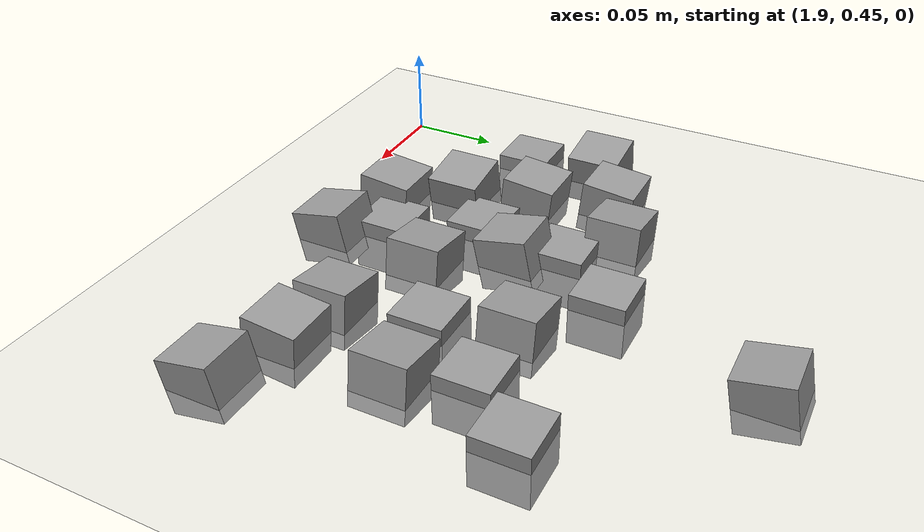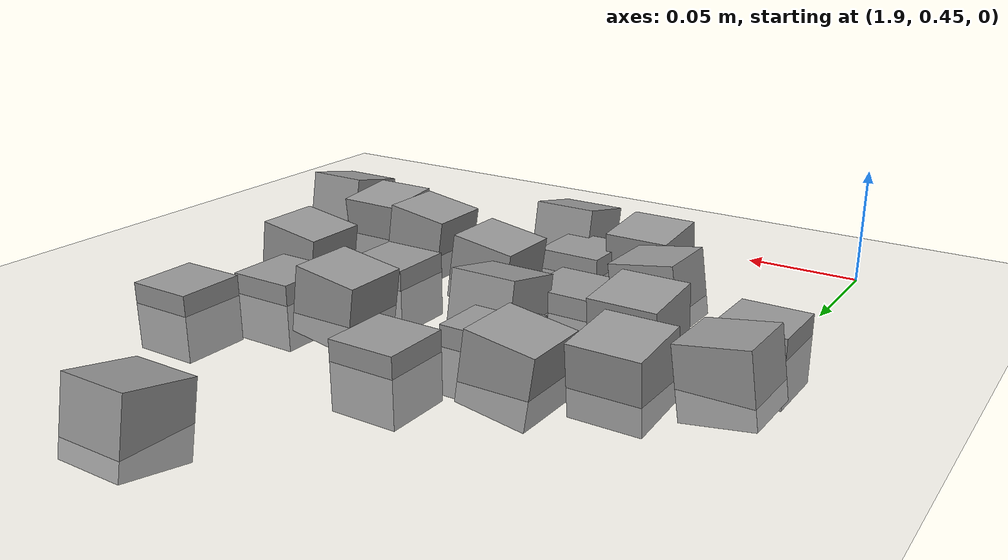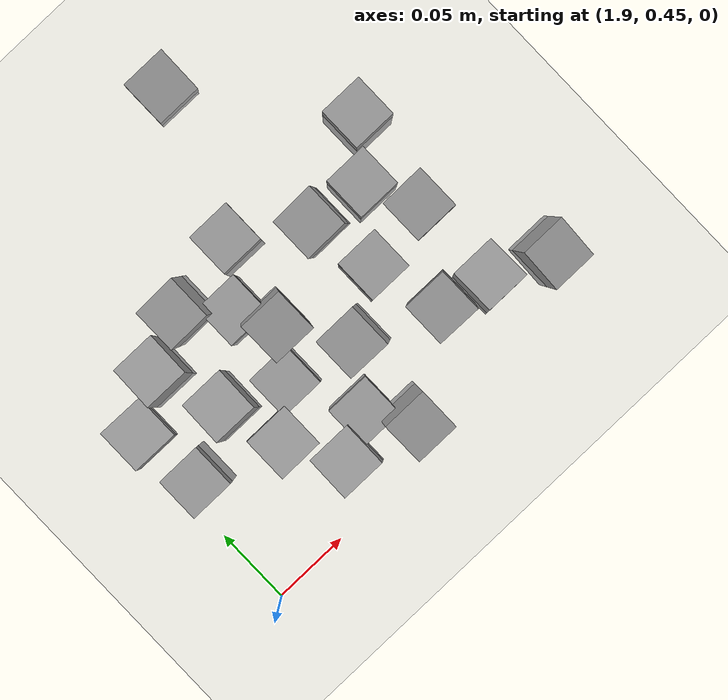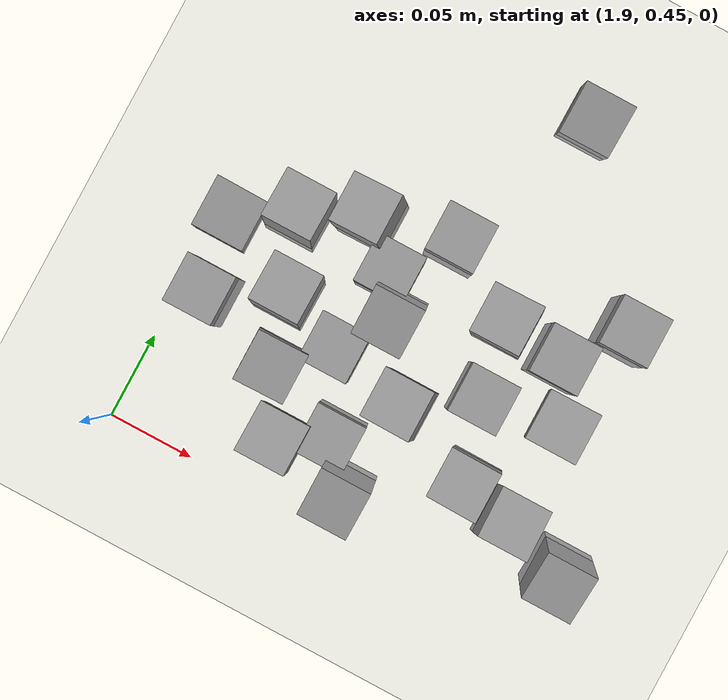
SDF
<sdf version="1.7">
 <world name="default">
  <model name="ground_plane">
   <static>1</static>
   <link name="link">
    <collision name="collision">
     <geometry><plane><normal>0 0 1</normal><size>100 100</size></plane></geometry>
     <surface><friction><ode><mu>100</mu><mu2>50</mu2></ode></friction></surface>
    </collision>
    <visual name="visual">
     <cast_shadows>0</cast_shadows>
     <geometry><plane><normal>0 0 1</normal><size>100 100</size></plane></geometry>
     <material>
      <script><uri>file://media/materials/scripts/gazebo.material</uri><name>Gazebo/Grey</name></script>
     </material>
    </visual>
   </link>
  </model>
  <model name="stone_road_3">
   <link name="link_0_clone_10">
    <inertial>
     <mass>1</mass>
     <inertia>
      <ixx>0.166667</ixx>
      <ixy>0</ixy>
      <ixz>0</ixz>
      <iyy>0.166667</iyy>
      <iyz>0</iyz>
      <izz>0.166667</izz>
     </inertia>
    </inertial>
    <pose>-0.01295 0.17123 0.003778 0.2 -0 0</pose>
    <kinematic>1</kinematic>
    <visual name="visual">
     <geometry><box><size>0.03 0.03 0.03</size></box></geometry>
     <material>
      <lighting>1</lighting>
      <script><uri>file://media/materials/scripts/gazebo.material</uri><name>Gazebo/Grey</name></script>
      <shader type="pixel"><normal_map>__default__</normal_map></shader>
      <ambient>0.3 0.3 0.3 1</ambient>
      <diffuse>0.7 0.7 0.7 1</diffuse>
      <specular>0.01 0.01 0.01 1</specular>
      <emissive>0 0 0 1</emissive>
     </material>
    </visual>
    <collision name="collision">
     <geometry><box><size>0.03 0.03 0.03</size></box></geometry>
     <surface>
      <friction>
       <ode><mu>1</mu><mu2>1</mu2><fdir1>0 0 0</fdir1><slip1>0</slip1><slip2>0</slip2></ode>
       <torsional>
        <coefficient>1</coefficient>
        <patch_radius>0</patch_radius>
        <surface_radius>0</surface_radius>
        <use_patch_radius>1</use_patch_radius>
        <ode><slip>0</slip></ode>
       </torsional>
      </friction>
      <bounce><restitution_coefficient>0</restitution_coefficient><threshold>1e+06</threshold></bounce>
      <contact>
       <collide_without_contact>0</collide_without_contact>
       <collide_without_contact_bitmask>1</collide_without_contact_bitmask>
       <collide_bitmask>1</collide_bitmask>
       <ode>
        <soft_cfm>0</soft_cfm>
        <soft_erp>0.2</soft_erp>
        <kp>1e+13</kp>
        <kd>1</kd>
        <max_vel>0.01</max_vel>
        <min_depth>0</min_depth>
       </ode>
       <bullet>
        <split_impulse>1</split_impulse>
        <split_impulse_penetration_threshold>-0.01</split_impulse_penetration_threshold>
        <soft_cfm>0</soft_cfm>
        <soft_erp>0.2</soft_erp>
        <kp>1e+13</kp>
        <kd>1</kd>
       </bullet>
      </contact>
     </surface>
    </collision>
   </link>
   <link name="link_0_clone_11">
    <inertial>
     <mass>1</mass>
     <inertia>
      <ixx>0.166667</ixx>
      <ixy>0</ixy>
      <ixz>0</ixz>
      <iyy>0.166667</iyy>
      <iyz>0</iyz>
      <izz>0.166667</izz>
     </inertia>
    </inertial>
    <pose>0.007758 0.071496 0.003778 0.2 -0 0</pose>
    <kinematic>1</kinematic>
    <visual name="visual">
     <geometry><box><size>0.03 0.03 0.03</size></box></geometry>
     <material>
      <lighting>1</lighting>
      <script><uri>file://media/materials/scripts/gazebo.material</uri><name>Gazebo/Grey</name></script>
      <shader type="pixel"><normal_map>__default__</normal_map></shader>
      <ambient>0.3 0.3 0.3 1</ambient>
      <diffuse>0.7 0.7 0.7 1</diffuse>
      <specular>0.01 0.01 0.01 1</specular>
      <emissive>0 0 0 1</emissive>
     </material>
    </visual>
    <collision name="collision">
     <geometry><box><size>0.03 0.03 0.03</size></box></geometry>
     <surface>
      <friction>
       <ode><mu>1</mu><mu2>1</mu2><fdir1>0 0 0</fdir1><slip1>0</slip1><slip2>0</slip2></ode>
       <torsional>
        <coefficient>1</coefficient>
        <patch_radius>0</patch_radius>
        <surface_radius>0</surface_radius>
        <use_patch_radius>1</use_patch_radius>
        <ode><slip>0</slip></ode>
       </torsional>
      </friction>
      <bounce><restitution_coefficient>0</restitution_coefficient><threshold>1e+06</threshold></bounce>
      <contact>
       <collide_without_contact>0</collide_without_contact>
       <collide_without_contact_bitmask>1</collide_without_contact_bitmask>
       <collide_bitmask>1</collide_bitmask>
       <ode>
        <soft_cfm>0</soft_cfm>
        <soft_erp>0.2</soft_erp>
        <kp>1e+13</kp>
        <kd>1</kd>
        <max_vel>0.01</max_vel>
        <min_depth>0</min_depth>
       </ode>
       <bullet>
        <split_impulse>1</split_impulse>
        <split_impulse_penetration_threshold>-0.01</split_impulse_penetration_threshold>
        <soft_cfm>0</soft_cfm>
        <soft_erp>0.2</soft_erp>
        <kp>1e+13</kp>
        <kd>1</kd>
       </bullet>
      </contact>
     </surface>
    </collision>
   </link>
   <link name="link_0_clone_2_clone_2">
    <inertial>
     <mass>1</mass>
     <inertia>
      <ixx>0.166667</ixx>
      <ixy>0</ixy>
      <ixz>0</ixz>
      <iyy>0.166667</iyy>
      <iyz>0</iyz>
      <izz>0.166667</izz>
     </inertia>
    </inertial>
    <pose>0.066563 0.110568 0.003778 0 -0.15 0</pose>
    <kinematic>1</kinematic>
    <visual name="visual">
     <geometry><box><size>0.03 0.03 0.03</size></box></geometry>
     <material>
      <lighting>1</lighting>
      <script><uri>file://media/materials/scripts/gazebo.material</uri><name>Gazebo/Grey</name></script>
      <shader type="pixel"><normal_map>__default__</normal_map></shader>
      <ambient>0.3 0.3 0.3 1</ambient>
      <diffuse>0.7 0.7 0.7 1</diffuse>
      <specular>0.01 0.01 0.01 1</specular>
      <emissive>0 0 0 1</emissive>
     </material>
    </visual>
    <collision name="collision">
     <geometry><box><size>0.03 0.03 0.03</size></box></geometry>
     <surface>
      <friction>
       <ode><mu>1</mu><mu2>1</mu2><fdir1>0 0 0</fdir1><slip1>0</slip1><slip2>0</slip2></ode>
       <torsional>
        <coefficient>1</coefficient>
        <patch_radius>0</patch_radius>
        <surface_radius>0</surface_radius>
        <use_patch_radius>1</use_patch_radius>
        <ode><slip>0</slip></ode>
       </torsional>
      </friction>
      <bounce><restitution_coefficient>0</restitution_coefficient><threshold>1e+06</threshold></bounce>
      <contact>
       <collide_without_contact>0</collide_without_contact>
       <collide_without_contact_bitmask>1</collide_without_contact_bitmask>
       <collide_bitmask>1</collide_bitmask>
       <ode>
        <soft_cfm>0</soft_cfm>
        <soft_erp>0.2</soft_erp>
        <kp>1e+13</kp>
        <kd>1</kd>
        <max_vel>0.01</max_vel>
        <min_depth>0</min_depth>
       </ode>
       <bullet>
        <split_impulse>1</split_impulse>
        <split_impulse_penetration_threshold>-0.01</split_impulse_penetration_threshold>
        <soft_cfm>0</soft_cfm>
        <soft_erp>0.2</soft_erp>
        <kp>1e+13</kp>
        <kd>1</kd>
       </bullet>
      </contact>
     </surface>
    </collision>
   </link>
   <link name="link_0_clone_2_clone_2_clone_10">
    <inertial>
     <mass>1</mass>
     <inertia>
      <ixx>0.166667</ixx>
      <ixy>0</ixy>
      <ixz>0</ixz>
      <iyy>0.166667</iyy>
      <iyz>0</iyz>
      <izz>0.166667</izz>
     </inertia>
    </inertial>
    <pose>0.09869 0.163436 0.003778 0 -0.15 0</pose>
    <kinematic>1</kinematic>
    <visual name="visual">
     <geometry><box><size>0.03 0.03 0.03</size></box></geometry>
     <material>
      <lighting>1</lighting>
      <script><uri>file://media/materials/scripts/gazebo.material</uri><name>Gazebo/Grey</name></script>
      <shader type="pixel"><normal_map>__default__</normal_map></shader>
      <ambient>0.3 0.3 0.3 1</ambient>
      <diffuse>0.7 0.7 0.7 1</diffuse>
      <specular>0.01 0.01 0.01 1</specular>
      <emissive>0 0 0 1</emissive>
     </material>
    </visual>
    <collision name="collision">
     <geometry><box><size>0.03 0.03 0.03</size></box></geometry>
     <surface>
      <friction>
       <ode><mu>1</mu><mu2>1</mu2><fdir1>0 0 0</fdir1><slip1>0</slip1><slip2>0</slip2></ode>
       <torsional>
        <coefficient>1</coefficient>
        <patch_radius>0</patch_radius>
        <surface_radius>0</surface_radius>
        <use_patch_radius>1</use_patch_radius>
        <ode><slip>0</slip></ode>
       </torsional>
      </friction>
      <bounce><restitution_coefficient>0</restitution_coefficient><threshold>1e+06</threshold></bounce>
      <contact>
       <collide_without_contact>0</collide_without_contact>
       <collide_without_contact_bitmask>1</collide_without_contact_bitmask>
       <collide_bitmask>1</collide_bitmask>
       <ode>
        <soft_cfm>0</soft_cfm>
        <soft_erp>0.2</soft_erp>
        <kp>1e+13</kp>
        <kd>1</kd>
        <max_vel>0.01</max_vel>
        <min_depth>0</min_depth>
       </ode>
       <bullet>
        <split_impulse>1</split_impulse>
        <split_impulse_penetration_threshold>-0.01</split_impulse_penetration_threshold>
        <soft_cfm>0</soft_cfm>
        <soft_erp>0.2</soft_erp>
        <kp>1e+13</kp>
        <kd>1</kd>
       </bullet>
      </contact>
     </surface>
    </collision>
   </link>
   <link name="link_0_clone_2_clone_2_clone_11">
    <inertial>
     <mass>1</mass>
     <inertia>
      <ixx>0.166667</ixx>
      <ixy>0</ixy>
      <ixz>0</ixz>
      <iyy>0.166667</iyy>
      <iyz>0</iyz>
      <izz>0.166667</izz>
     </inertia>
    </inertial>
    <pose>-0.050382 0.216558 0.003778 0 -0.15 0</pose>
    <kinematic>1</kinematic>
    <visual name="visual">
     <geometry><box><size>0.03 0.03 0.03</size></box></geometry>
     <material>
      <lighting>1</lighting>
      <script><uri>file://media/materials/scripts/gazebo.material</uri><name>Gazebo/Grey</name></script>
      <shader type="pixel"><normal_map>__default__</normal_map></shader>
      <ambient>0.3 0.3 0.3 1</ambient>
      <diffuse>0.7 0.7 0.7 1</diffuse>
      <specular>0.01 0.01 0.01 1</specular>
      <emissive>0 0 0 1</emissive>
     </material>
    </visual>
    <collision name="collision">
     <geometry><box><size>0.03 0.03 0.03</size></box></geometry>
     <surface>
      <friction>
       <ode><mu>1</mu><mu2>1</mu2><fdir1>0 0 0</fdir1><slip1>0</slip1><slip2>0</slip2></ode>
       <torsional>
        <coefficient>1</coefficient>
        <patch_radius>0</patch_radius>
        <surface_radius>0</surface_radius>
        <use_patch_radius>1</use_patch_radius>
        <ode><slip>0</slip></ode>
       </torsional>
      </friction>
      <bounce><restitution_coefficient>0</restitution_coefficient><threshold>1e+06</threshold></bounce>
      <contact>
       <collide_without_contact>0</collide_without_contact>
       <collide_without_contact_bitmask>1</collide_without_contact_bitmask>
       <collide_bitmask>1</collide_bitmask>
       <ode>
        <soft_cfm>0</soft_cfm>
        <soft_erp>0.2</soft_erp>
        <kp>1e+13</kp>
        <kd>1</kd>
        <max_vel>0.01</max_vel>
        <min_depth>0</min_depth>
       </ode>
       <bullet>
        <split_impulse>1</split_impulse>
        <split_impulse_penetration_threshold>-0.01</split_impulse_penetration_threshold>
        <soft_cfm>0</soft_cfm>
        <soft_erp>0.2</soft_erp>
        <kp>1e+13</kp>
        <kd>1</kd>
       </bullet>
      </contact>
     </surface>
    </collision>
   </link>
   <link name="link_0_clone_2_clone_2_clone_12">
    <inertial>
     <mass>1</mass>
     <inertia>
      <ixx>0.166667</ixx>
      <ixy>0</ixy>
      <ixz>0</ixz>
      <iyy>0.166667</iyy>
      <iyz>0</iyz>
      <izz>0.166667</izz>
     </inertia>
    </inertial>
    <pose>0.044693 0.200081 0.003778 0 -0.15 0</pose>
    <kinematic>1</kinematic>
    <visual name="visual">
     <geometry><box><size>0.03 0.03 0.03</size></box></geometry>
     <material>
      <lighting>1</lighting>
      <script><uri>file://media/materials/scripts/gazebo.material</uri><name>Gazebo/Grey</name></script>
      <shader type="pixel"><normal_map>__default__</normal_map></shader>
      <ambient>0.3 0.3 0.3 1</ambient>
      <diffuse>0.7 0.7 0.7 1</diffuse>
      <specular>0.01 0.01 0.01 1</specular>
      <emissive>0 0 0 1</emissive>
     </material>
    </visual>
    <collision name="collision">
     <geometry><box><size>0.03 0.03 0.03</size></box></geometry>
     <surface>
      <friction>
       <ode><mu>1</mu><mu2>1</mu2><fdir1>0 0 0</fdir1><slip1>0</slip1><slip2>0</slip2></ode>
       <torsional>
        <coefficient>1</coefficient>
        <patch_radius>0</patch_radius>
        <surface_radius>0</surface_radius>
        <use_patch_radius>1</use_patch_radius>
        <ode><slip>0</slip></ode>
       </torsional>
      </friction>
      <bounce><restitution_coefficient>0</restitution_coefficient><threshold>1e+06</threshold></bounce>
      <contact>
       <collide_without_contact>0</collide_without_contact>
       <collide_without_contact_bitmask>1</collide_without_contact_bitmask>
       <collide_bitmask>1</collide_bitmask>
       <ode>
        <soft_cfm>0</soft_cfm>
        <soft_erp>0.2</soft_erp>
        <kp>1e+13</kp>
        <kd>1</kd>
        <max_vel>0.01</max_vel>
        <min_depth>0</min_depth>
       </ode>
       <bullet>
        <split_impulse>1</split_impulse>
        <split_impulse_penetration_threshold>-0.01</split_impulse_penetration_threshold>
        <soft_cfm>0</soft_cfm>
        <soft_erp>0.2</soft_erp>
        <kp>1e+13</kp>
        <kd>1</kd>
       </bullet>
      </contact>
     </surface>
    </collision>
   </link>
   <link name="link_0_clone_2_clone_2_clone_13">
    <inertial>
     <mass>1</mass>
     <inertia>
      <ixx>0.166667</ixx>
      <ixy>0</ixy>
      <ixz>0</ixz>
      <iyy>0.166667</iyy>
      <iyz>0</iyz>
      <izz>0.166667</izz>
     </inertia>
    </inertial>
    <pose>0.014407 0.13189 0.003778 0 -0.15 0</pose>
    <kinematic>1</kinematic>
    <visual name="visual">
     <geometry><box><size>0.03 0.03 0.03</size></box></geometry>
     <material>
      <lighting>1</lighting>
      <script><uri>file://media/materials/scripts/gazebo.material</uri><name>Gazebo/Grey</name></script>
      <shader type="pixel"><normal_map>__default__</normal_map></shader>
      <ambient>0.3 0.3 0.3 1</ambient>
      <diffuse>0.7 0.7 0.7 1</diffuse>
      <specular>0.01 0.01 0.01 1</specular>
      <emissive>0 0 0 1</emissive>
     </material>
    </visual>
    <collision name="collision">
     <geometry><box><size>0.03 0.03 0.03</size></box></geometry>
     <surface>
      <friction>
       <ode><mu>1</mu><mu2>1</mu2><fdir1>0 0 0</fdir1><slip1>0</slip1><slip2>0</slip2></ode>
       <torsional>
        <coefficient>1</coefficient>
        <patch_radius>0</patch_radius>
        <surface_radius>0</surface_radius>
        <use_patch_radius>1</use_patch_radius>
        <ode><slip>0</slip></ode>
       </torsional>
      </friction>
      <bounce><restitution_coefficient>0</restitution_coefficient><threshold>1e+06</threshold></bounce>
      <contact>
       <collide_without_contact>0</collide_without_contact>
       <collide_without_contact_bitmask>1</collide_without_contact_bitmask>
       <collide_bitmask>1</collide_bitmask>
       <ode>
        <soft_cfm>0</soft_cfm>
        <soft_erp>0.2</soft_erp>
        <kp>1e+13</kp>
        <kd>1</kd>
        <max_vel>0.01</max_vel>
        <min_depth>0</min_depth>
       </ode>
       <bullet>
        <split_impulse>1</split_impulse>
        <split_impulse_penetration_threshold>-0.01</split_impulse_penetration_threshold>
        <soft_cfm>0</soft_cfm>
        <soft_erp>0.2</soft_erp>
        <kp>1e+13</kp>
        <kd>1</kd>
       </bullet>
      </contact>
     </surface>
    </collision>
   </link>
   <link name="link_0_clone_2_clone_2_clone_13_clone_clone_1">
    <inertial>
     <mass>1</mass>
     <inertia>
      <ixx>0.166667</ixx>
      <ixy>0</ixy>
      <ixz>0</ixz>
      <iyy>0.166667</iyy>
      <iyz>0</iyz>
      <izz>0.166667</izz>
     </inertia>
    </inertial>
    <pose>0.098415 0.103772 0.003778 -0.1 0 0</pose>
    <kinematic>1</kinematic>
    <visual name="visual">
     <geometry><box><size>0.03 0.03 0.03</size></box></geometry>
     <material>
      <lighting>1</lighting>
      <script><uri>file://media/materials/scripts/gazebo.material</uri><name>Gazebo/Grey</name></script>
      <shader type="pixel"><normal_map>__default__</normal_map></shader>
      <ambient>0.3 0.3 0.3 1</ambient>
      <diffuse>0.7 0.7 0.7 1</diffuse>
      <specular>0.01 0.01 0.01 1</specular>
      <emissive>0 0 0 1</emissive>
     </material>
    </visual>
    <collision name="collision">
     <geometry><box><size>0.03 0.03 0.03</size></box></geometry>
     <surface>
      <friction>
       <ode><mu>1</mu><mu2>1</mu2><fdir1>0 0 0</fdir1><slip1>0</slip1><slip2>0</slip2></ode>
       <torsional>
        <coefficient>1</coefficient>
        <patch_radius>0</patch_radius>
        <surface_radius>0</surface_radius>
        <use_patch_radius>1</use_patch_radius>
        <ode><slip>0</slip></ode>
       </torsional>
      </friction>
      <bounce><restitution_coefficient>0</restitution_coefficient><threshold>1e+06</threshold></bounce>
      <contact>
       <collide_without_contact>0</collide_without_contact>
       <collide_without_contact_bitmask>1</collide_without_contact_bitmask>
       <collide_bitmask>1</collide_bitmask>
       <ode>
        <soft_cfm>0</soft_cfm>
        <soft_erp>0.2</soft_erp>
        <kp>1e+13</kp>
        <kd>1</kd>
        <max_vel>0.01</max_vel>
        <min_depth>0</min_depth>
       </ode>
       <bullet>
        <split_impulse>1</split_impulse>
        <split_impulse_penetration_threshold>-0.01</split_impulse_penetration_threshold>
        <soft_cfm>0</soft_cfm>
        <soft_erp>0.2</soft_erp>
        <kp>1e+13</kp>
        <kd>1</kd>
       </bullet>
      </contact>
     </surface>
    </collision>
   </link>
   <link name="link_0_clone_2_clone_2_clone_13_clone_clone_13">
    <inertial>
     <mass>1</mass>
     <inertia>
      <ixx>0.166667</ixx>
      <ixy>0</ixy>
      <ixz>0</ixz>
      <iyy>0.166667</iyy>
      <iyz>0</iyz>
      <izz>0.166667</izz>
     </inertia>
    </inertial>
    <pose>-0.069861 0.157394 0.003778 -0.1 0 0</pose>
    <kinematic>1</kinematic>
    <visual name="visual">
     <geometry><box><size>0.03 0.03 0.03</size></box></geometry>
     <material>
      <lighting>1</lighting>
      <script><uri>file://media/materials/scripts/gazebo.material</uri><name>Gazebo/Grey</name></script>
      <shader type="pixel"><normal_map>__default__</normal_map></shader>
      <ambient>0.3 0.3 0.3 1</ambient>
      <diffuse>0.7 0.7 0.7 1</diffuse>
      <specular>0.01 0.01 0.01 1</specular>
      <emissive>0 0 0 1</emissive>
     </material>
    </visual>
    <collision name="collision">
     <geometry><box><size>0.03 0.03 0.03</size></box></geometry>
     <surface>
      <friction>
       <ode><mu>1</mu><mu2>1</mu2><fdir1>0 0 0</fdir1><slip1>0</slip1><slip2>0</slip2></ode>
       <torsional>
        <coefficient>1</coefficient>
        <patch_radius>0</patch_radius>
        <surface_radius>0</surface_radius>
        <use_patch_radius>1</use_patch_radius>
        <ode><slip>0</slip></ode>
       </torsional>
      </friction>
      <bounce><restitution_coefficient>0</restitution_coefficient><threshold>1e+06</threshold></bounce>
      <contact>
       <collide_without_contact>0</collide_without_contact>
       <collide_without_contact_bitmask>1</collide_without_contact_bitmask>
       <collide_bitmask>1</collide_bitmask>
       <ode>
        <soft_cfm>0</soft_cfm>
        <soft_erp>0.2</soft_erp>
        <kp>1e+13</kp>
        <kd>1</kd>
        <max_vel>0.01</max_vel>
        <min_depth>0</min_depth>
       </ode>
       <bullet>
        <split_impulse>1</split_impulse>
        <split_impulse_penetration_threshold>-0.01</split_impulse_penetration_threshold>
        <soft_cfm>0</soft_cfm>
        <soft_erp>0.2</soft_erp>
        <kp>1e+13</kp>
        <kd>1</kd>
       </bullet>
      </contact>
     </surface>
    </collision>
   </link>
   <link name="link_0_clone_2_clone_2_clone_13_clone_clone_15">
    <inertial>
     <mass>1</mass>
     <inertia>
      <ixx>0.166667</ixx>
      <ixy>0</ixy>
      <ixz>0</ixz>
      <iyy>0.166667</iyy>
      <iyz>0</iyz>
      <izz>0.166667</izz>
     </inertia>
    </inertial>
    <pose>-0.084893 0.19984 0.003778 -0.1 0 0</pose>
    <kinematic>1</kinematic>
    <visual name="visual">
     <geometry><box><size>0.03 0.03 0.03</size></box></geometry>
     <material>
      <lighting>1</lighting>
      <script><uri>file://media/materials/scripts/gazebo.material</uri><name>Gazebo/Grey</name></script>
      <shader type="pixel"><normal_map>__default__</normal_map></shader>
      <ambient>0.3 0.3 0.3 1</ambient>
      <diffuse>0.7 0.7 0.7 1</diffuse>
      <specular>0.01 0.01 0.01 1</specular>
      <emissive>0 0 0 1</emissive>
     </material>
    </visual>
    <collision name="collision">
     <geometry><box><size>0.03 0.03 0.03</size></box></geometry>
     <surface>
      <friction>
       <ode><mu>1</mu><mu2>1</mu2><fdir1>0 0 0</fdir1><slip1>0</slip1><slip2>0</slip2></ode>
       <torsional>
        <coefficient>1</coefficient>
        <patch_radius>0</patch_radius>
        <surface_radius>0</surface_radius>
        <use_patch_radius>1</use_patch_radius>
        <ode><slip>0</slip></ode>
       </torsional>
      </friction>
      <bounce><restitution_coefficient>0</restitution_coefficient><threshold>1e+06</threshold></bounce>
      <contact>
       <collide_without_contact>0</collide_without_contact>
       <collide_without_contact_bitmask>1</collide_without_contact_bitmask>
       <collide_bitmask>1</collide_bitmask>
       <ode>
        <soft_cfm>0</soft_cfm>
        <soft_erp>0.2</soft_erp>
        <kp>1e+13</kp>
        <kd>1</kd>
        <max_vel>0.01</max_vel>
        <min_depth>0</min_depth>
       </ode>
       <bullet>
        <split_impulse>1</split_impulse>
        <split_impulse_penetration_threshold>-0.01</split_impulse_penetration_threshold>
        <soft_cfm>0</soft_cfm>
        <soft_erp>0.2</soft_erp>
        <kp>1e+13</kp>
        <kd>1</kd>
       </bullet>
      </contact>
     </surface>
    </collision>
   </link>
   <link name="link_0_clone_2_clone_2_clone_13_clone_clone_16">
    <inertial>
     <mass>1</mass>
     <inertia>
      <ixx>0.166667</ixx>
      <ixy>0</ixy>
      <ixz>0</ixz>
      <iyy>0.166667</iyy>
      <iyz>0</iyz>
      <izz>0.166667</izz>
     </inertia>
    </inertial>
    <pose>0.108948 0.22849 -0.006222 0 -0 0</pose>
    <kinematic>1</kinematic>
    <visual name="visual">
     <geometry><box><size>0.03 0.03 0.03</size></box></geometry>
     <material>
      <lighting>1</lighting>
      <script><uri>file://media/materials/scripts/gazebo.material</uri><name>Gazebo/Grey</name></script>
      <shader type="pixel"><normal_map>__default__</normal_map></shader>
      <ambient>0.3 0.3 0.3 1</ambient>
      <diffuse>0.7 0.7 0.7 1</diffuse>
      <specular>0.01 0.01 0.01 1</specular>
      <emissive>0 0 0 1</emissive>
     </material>
    </visual>
    <collision name="collision">
     <geometry><box><size>0.03 0.03 0.03</size></box></geometry>
     <surface>
      <friction>
       <ode><mu>1</mu><mu2>1</mu2><fdir1>0 0 0</fdir1><slip1>0</slip1><slip2>0</slip2></ode>
       <torsional>
        <coefficient>1</coefficient>
        <patch_radius>0</patch_radius>
        <surface_radius>0</surface_radius>
        <use_patch_radius>1</use_patch_radius>
        <ode><slip>0</slip></ode>
       </torsional>
      </friction>
      <bounce><restitution_coefficient>0</restitution_coefficient><threshold>1e+06</threshold></bounce>
      <contact>
       <collide_without_contact>0</collide_without_contact>
       <collide_without_contact_bitmask>1</collide_without_contact_bitmask>
       <collide_bitmask>1</collide_bitmask>
       <ode>
        <soft_cfm>0</soft_cfm>
        <soft_erp>0.2</soft_erp>
        <kp>1e+13</kp>
        <kd>1</kd>
        <max_vel>0.01</max_vel>
        <min_depth>0</min_depth>
       </ode>
       <bullet>
        <split_impulse>1</split_impulse>
        <split_impulse_penetration_threshold>-0.01</split_impulse_penetration_threshold>
        <soft_cfm>0</soft_cfm>
        <soft_erp>0.2</soft_erp>
        <kp>1e+13</kp>
        <kd>1</kd>
       </bullet>
      </contact>
     </surface>
    </collision>
   </link>
   <link name="link_0_clone_2_clone_2_clone_13_clone_clone_16_clone">
    <inertial>
     <mass>1</mass>
     <inertia>
      <ixx>0.166667</ixx>
      <ixy>0</ixy>
      <ixz>0</ixz>
      <iyy>0.166667</iyy>
      <iyz>0</iyz>
      <izz>0.166667</izz>
     </inertia>
    </inertial>
    <pose>0.0535 0.156403 -0.006222 0 -0 0</pose>
    <kinematic>1</kinematic>
    <visual name="visual">
     <geometry><box><size>0.03 0.03 0.03</size></box></geometry>
     <material>
      <lighting>1</lighting>
      <script><uri>file://media/materials/scripts/gazebo.material</uri><name>Gazebo/Grey</name></script>
      <shader type="pixel"><normal_map>__default__</normal_map></shader>
      <ambient>0.3 0.3 0.3 1</ambient>
      <diffuse>0.7 0.7 0.7 1</diffuse>
      <specular>0.01 0.01 0.01 1</specular>
      <emissive>0 0 0 1</emissive>
     </material>
    </visual>
    <collision name="collision">
     <geometry><box><size>0.03 0.03 0.03</size></box></geometry>
     <surface>
      <friction>
       <ode><mu>1</mu><mu2>1</mu2><fdir1>0 0 0</fdir1><slip1>0</slip1><slip2>0</slip2></ode>
       <torsional>
        <coefficient>1</coefficient>
        <patch_radius>0</patch_radius>
        <surface_radius>0</surface_radius>
        <use_patch_radius>1</use_patch_radius>
        <ode><slip>0</slip></ode>
       </torsional>
      </friction>
      <bounce><restitution_coefficient>0</restitution_coefficient><threshold>1e+06</threshold></bounce>
      <contact>
       <collide_without_contact>0</collide_without_contact>
       <collide_without_contact_bitmask>1</collide_without_contact_bitmask>
       <collide_bitmask>1</collide_bitmask>
       <ode>
        <soft_cfm>0</soft_cfm>
        <soft_erp>0.2</soft_erp>
        <kp>1e+13</kp>
        <kd>1</kd>
        <max_vel>0.01</max_vel>
        <min_depth>0</min_depth>
       </ode>
       <bullet>
        <split_impulse>1</split_impulse>
        <split_impulse_penetration_threshold>-0.01</split_impulse_penetration_threshold>
        <soft_cfm>0</soft_cfm>
        <soft_erp>0.2</soft_erp>
        <kp>1e+13</kp>
        <kd>1</kd>
       </bullet>
      </contact>
     </surface>
    </collision>
   </link>
   <link name="link_0_clone_2_clone_2_clone_13_clone_clone_16_clone_0">
    <inertial>
     <mass>1</mass>
     <inertia>
      <ixx>0.166667</ixx>
      <ixy>0</ixy>
      <ixz>0</ixz>
      <iyy>0.166667</iyy>
      <iyz>0</iyz>
      <izz>0.166667</izz>
     </inertia>
    </inertial>
    <pose>-0.010782 0.09679 -0.006222 0 -0 0</pose>
    <kinematic>1</kinematic>
    <visual name="visual">
     <geometry><box><size>0.03 0.03 0.03</size></box></geometry>
     <material>
      <lighting>1</lighting>
      <script><uri>file://media/materials/scripts/gazebo.material</uri><name>Gazebo/Grey</name></script>
      <shader type="pixel"><normal_map>__default__</normal_map></shader>
      <ambient>0.3 0.3 0.3 1</ambient>
      <diffuse>0.7 0.7 0.7 1</diffuse>
      <specular>0.01 0.01 0.01 1</specular>
      <emissive>0 0 0 1</emissive>
     </material>
    </visual>
    <collision name="collision">
     <geometry><box><size>0.03 0.03 0.03</size></box></geometry>
     <surface>
      <friction>
       <ode><mu>1</mu><mu2>1</mu2><fdir1>0 0 0</fdir1><slip1>0</slip1><slip2>0</slip2></ode>
       <torsional>
        <coefficient>1</coefficient>
        <patch_radius>0</patch_radius>
        <surface_radius>0</surface_radius>
        <use_patch_radius>1</use_patch_radius>
        <ode><slip>0</slip></ode>
       </torsional>
      </friction>
      <bounce><restitution_coefficient>0</restitution_coefficient><threshold>1e+06</threshold></bounce>
      <contact>
       <collide_without_contact>0</collide_without_contact>
       <collide_without_contact_bitmask>1</collide_without_contact_bitmask>
       <collide_bitmask>1</collide_bitmask>
       <ode>
        <soft_cfm>0</soft_cfm>
        <soft_erp>0.2</soft_erp>
        <kp>1e+13</kp>
        <kd>1</kd>
        <max_vel>0.01</max_vel>
        <min_depth>0</min_depth>
       </ode>
       <bullet>
        <split_impulse>1</split_impulse>
        <split_impulse_penetration_threshold>-0.01</split_impulse_penetration_threshold>
        <soft_cfm>0</soft_cfm>
        <soft_erp>0.2</soft_erp>
        <kp>1e+13</kp>
        <kd>1</kd>
       </bullet>
      </contact>
     </surface>
    </collision>
   </link>
   <link name="link_0_clone_2_clone_2_clone_13_clone_clone_16_clone_21">
    <inertial>
     <mass>1</mass>
     <inertia>
      <ixx>0.166667</ixx>
      <ixy>0</ixy>
      <ixz>0</ixz>
      <iyy>0.166667</iyy>
      <iyz>0</iyz>
      <izz>0.166667</izz>
     </inertia>
    </inertial>
    <pose>-0.032398 0.142589 -0.006222 0 -0 0</pose>
    <kinematic>1</kinematic>
    <visual name="visual">
     <geometry><box><size>0.03 0.03 0.03</size></box></geometry>
     <material>
      <lighting>1</lighting>
      <script><uri>file://media/materials/scripts/gazebo.material</uri><name>Gazebo/Grey</name></script>
      <shader type="pixel"><normal_map>__default__</normal_map></shader>
      <ambient>0.3 0.3 0.3 1</ambient>
      <diffuse>0.7 0.7 0.7 1</diffuse>
      <specular>0.01 0.01 0.01 1</specular>
      <emissive>0 0 0 1</emissive>
     </material>
    </visual>
    <collision name="collision">
     <geometry><box><size>0.03 0.03 0.03</size></box></geometry>
     <surface>
      <friction>
       <ode><mu>1</mu><mu2>1</mu2><fdir1>0 0 0</fdir1><slip1>0</slip1><slip2>0</slip2></ode>
       <torsional>
        <coefficient>1</coefficient>
        <patch_radius>0</patch_radius>
        <surface_radius>0</surface_radius>
        <use_patch_radius>1</use_patch_radius>
        <ode><slip>0</slip></ode>
       </torsional>
      </friction>
      <bounce><restitution_coefficient>0</restitution_coefficient><threshold>1e+06</threshold></bounce>
      <contact>
       <collide_without_contact>0</collide_without_contact>
       <collide_without_contact_bitmask>1</collide_without_contact_bitmask>
       <collide_bitmask>1</collide_bitmask>
       <ode>
        <soft_cfm>0</soft_cfm>
        <soft_erp>0.2</soft_erp>
        <kp>1e+13</kp>
        <kd>1</kd>
        <max_vel>0.01</max_vel>
        <min_depth>0</min_depth>
       </ode>
       <bullet>
        <split_impulse>1</split_impulse>
        <split_impulse_penetration_threshold>-0.01</split_impulse_penetration_threshold>
        <soft_cfm>0</soft_cfm>
        <soft_erp>0.2</soft_erp>
        <kp>1e+13</kp>
        <kd>1</kd>
       </bullet>
      </contact>
     </surface>
    </collision>
   </link>
   <link name="link_0_clone_2_clone_2_clone_13_clone_clone_16_clone_22">
    <inertial>
     <mass>1</mass>
     <inertia>
      <ixx>0.166667</ixx>
      <ixy>0</ixy>
      <ixz>0</ixz>
      <iyy>0.166667</iyy>
      <iyz>0</iyz>
      <izz>0.166667</izz>
     </inertia>
    </inertial>
    <pose>-0.025872 0.194724 -0.006222 0 -0 0</pose>
    <kinematic>1</kinematic>
    <visual name="visual">
     <geometry><box><size>0.03 0.03 0.03</size></box></geometry>
     <material>
      <lighting>1</lighting>
      <script><uri>file://media/materials/scripts/gazebo.material</uri><name>Gazebo/Grey</name></script>
      <shader type="pixel"><normal_map>__default__</normal_map></shader>
      <ambient>0.3 0.3 0.3 1</ambient>
      <diffuse>0.7 0.7 0.7 1</diffuse>
      <specular>0.01 0.01 0.01 1</specular>
      <emissive>0 0 0 1</emissive>
     </material>
    </visual>
    <collision name="collision">
     <geometry><box><size>0.03 0.03 0.03</size></box></geometry>
     <surface>
      <friction>
       <ode><mu>1</mu><mu2>1</mu2><fdir1>0 0 0</fdir1><slip1>0</slip1><slip2>0</slip2></ode>
       <torsional>
        <coefficient>1</coefficient>
        <patch_radius>0</patch_radius>
        <surface_radius>0</surface_radius>
        <use_patch_radius>1</use_patch_radius>
        <ode><slip>0</slip></ode>
       </torsional>
      </friction>
      <bounce><restitution_coefficient>0</restitution_coefficient><threshold>1e+06</threshold></bounce>
      <contact>
       <collide_without_contact>0</collide_without_contact>
       <collide_without_contact_bitmask>1</collide_without_contact_bitmask>
       <collide_bitmask>1</collide_bitmask>
       <ode>
        <soft_cfm>0</soft_cfm>
        <soft_erp>0.2</soft_erp>
        <kp>1e+13</kp>
        <kd>1</kd>
        <max_vel>0.01</max_vel>
        <min_depth>0</min_depth>
       </ode>
       <bullet>
        <split_impulse>1</split_impulse>
        <split_impulse_penetration_threshold>-0.01</split_impulse_penetration_threshold>
        <soft_cfm>0</soft_cfm>
        <soft_erp>0.2</soft_erp>
        <kp>1e+13</kp>
        <kd>1</kd>
       </bullet>
      </contact>
     </surface>
    </collision>
   </link>
   <link name="link_0_clone_2_clone_2_clone_13_clone_clone_16_clone_23">
    <inertial>
     <mass>1</mass>
     <inertia>
      <ixx>0.166667</ixx>
      <ixy>0</ixy>
      <ixz>0</ixz>
      <iyy>0.166667</iyy>
      <iyz>0</iyz>
      <izz>0.166667</izz>
     </inertia>
    </inertial>
    <pose>0.000385 0.228664 -0.006222 0 -0 0</pose>
    <kinematic>1</kinematic>
    <visual name="visual">
     <geometry><box><size>0.03 0.03 0.03</size></box></geometry>
     <material>
      <lighting>1</lighting>
      <script><uri>file://media/materials/scripts/gazebo.material</uri><name>Gazebo/Grey</name></script>
      <shader type="pixel"><normal_map>__default__</normal_map></shader>
      <ambient>0.3 0.3 0.3 1</ambient>
      <diffuse>0.7 0.7 0.7 1</diffuse>
      <specular>0.01 0.01 0.01 1</specular>
      <emissive>0 0 0 1</emissive>
     </material>
    </visual>
    <collision name="collision">
     <geometry><box><size>0.03 0.03 0.03</size></box></geometry>
     <surface>
      <friction>
       <ode><mu>1</mu><mu2>1</mu2><fdir1>0 0 0</fdir1><slip1>0</slip1><slip2>0</slip2></ode>
       <torsional>
        <coefficient>1</coefficient>
        <patch_radius>0</patch_radius>
        <surface_radius>0</surface_radius>
        <use_patch_radius>1</use_patch_radius>
        <ode><slip>0</slip></ode>
       </torsional>
      </friction>
      <bounce><restitution_coefficient>0</restitution_coefficient><threshold>1e+06</threshold></bounce>
      <contact>
       <collide_without_contact>0</collide_without_contact>
       <collide_without_contact_bitmask>1</collide_without_contact_bitmask>
       <collide_bitmask>1</collide_bitmask>
       <ode>
        <soft_cfm>0</soft_cfm>
        <soft_erp>0.2</soft_erp>
        <kp>1e+13</kp>
        <kd>1</kd>
        <max_vel>0.01</max_vel>
        <min_depth>0</min_depth>
       </ode>
       <bullet>
        <split_impulse>1</split_impulse>
        <split_impulse_penetration_threshold>-0.01</split_impulse_penetration_threshold>
        <soft_cfm>0</soft_cfm>
        <soft_erp>0.2</soft_erp>
        <kp>1e+13</kp>
        <kd>1</kd>
       </bullet>
      </contact>
     </surface>
    </collision>
   </link>
   <link name="link_0_clone_2_clone_2_clone_13_clone_clone_16_clone_24">
    <inertial>
     <mass>1</mass>
     <inertia>
      <ixx>0.166667</ixx>
      <ixy>0</ixy>
      <ixz>0</ixz>
      <iyy>0.166667</iyy>
      <iyz>0</iyz>
      <izz>0.166667</izz>
     </inertia>
    </inertial>
    <pose>0.08246 0.196776 -0.006222 0 -0 0</pose>
    <kinematic>1</kinematic>
    <visual name="visual">
     <geometry><box><size>0.03 0.03 0.03</size></box></geometry>
     <material>
      <lighting>1</lighting>
      <script><uri>file://media/materials/scripts/gazebo.material</uri><name>Gazebo/Grey</name></script>
      <shader type="pixel"><normal_map>__default__</normal_map></shader>
      <ambient>0.3 0.3 0.3 1</ambient>
      <diffuse>0.7 0.7 0.7 1</diffuse>
      <specular>0.01 0.01 0.01 1</specular>
      <emissive>0 0 0 1</emissive>
     </material>
    </visual>
    <collision name="collision">
     <geometry><box><size>0.03 0.03 0.03</size></box></geometry>
     <surface>
      <friction>
       <ode><mu>1</mu><mu2>1</mu2><fdir1>0 0 0</fdir1><slip1>0</slip1><slip2>0</slip2></ode>
       <torsional>
        <coefficient>1</coefficient>
        <patch_radius>0</patch_radius>
        <surface_radius>0</surface_radius>
        <use_patch_radius>1</use_patch_radius>
        <ode><slip>0</slip></ode>
       </torsional>
      </friction>
      <bounce><restitution_coefficient>0</restitution_coefficient><threshold>1e+06</threshold></bounce>
      <contact>
       <collide_without_contact>0</collide_without_contact>
       <collide_without_contact_bitmask>1</collide_without_contact_bitmask>
       <collide_bitmask>1</collide_bitmask>
       <ode>
        <soft_cfm>0</soft_cfm>
        <soft_erp>0.2</soft_erp>
        <kp>1e+13</kp>
        <kd>1</kd>
        <max_vel>0.01</max_vel>
        <min_depth>0</min_depth>
       </ode>
       <bullet>
        <split_impulse>1</split_impulse>
        <split_impulse_penetration_threshold>-0.01</split_impulse_penetration_threshold>
        <soft_cfm>0</soft_cfm>
        <soft_erp>0.2</soft_erp>
        <kp>1e+13</kp>
        <kd>1</kd>
       </bullet>
      </contact>
     </surface>
    </collision>
   </link>
   <link name="link_0_clone_2_clone_2_clone_13_clone_clone_16_clone_3">
    <inertial>
     <mass>1</mass>
     <inertia>
      <ixx>0.166667</ixx>
      <ixy>0</ixy>
      <ixz>0</ixz>
      <iyy>0.166667</iyy>
      <iyz>0</iyz>
      <izz>0.166667</izz>
     </inertia>
    </inertial>
    <pose>-0.112739 0.135576 -0.006222 0 -0 0</pose>
    <kinematic>1</kinematic>
    <visual name="visual">
     <geometry><box><size>0.03 0.03 0.03</size></box></geometry>
     <material>
      <lighting>1</lighting>
      <script><uri>file://media/materials/scripts/gazebo.material</uri><name>Gazebo/Grey</name></script>
      <shader type="pixel"><normal_map>__default__</normal_map></shader>
      <ambient>0.3 0.3 0.3 1</ambient>
      <diffuse>0.7 0.7 0.7 1</diffuse>
      <specular>0.01 0.01 0.01 1</specular>
      <emissive>0 0 0 1</emissive>
     </material>
    </visual>
    <collision name="collision">
     <geometry><box><size>0.03 0.03 0.03</size></box></geometry>
     <surface>
      <friction>
       <ode><mu>1</mu><mu2>1</mu2><fdir1>0 0 0</fdir1><slip1>0</slip1><slip2>0</slip2></ode>
       <torsional>
        <coefficient>1</coefficient>
        <patch_radius>0</patch_radius>
        <surface_radius>0</surface_radius>
        <use_patch_radius>1</use_patch_radius>
        <ode><slip>0</slip></ode>
       </torsional>
      </friction>
      <bounce><restitution_coefficient>0</restitution_coefficient><threshold>1e+06</threshold></bounce>
      <contact>
       <collide_without_contact>0</collide_without_contact>
       <collide_without_contact_bitmask>1</collide_without_contact_bitmask>
       <collide_bitmask>1</collide_bitmask>
       <ode>
        <soft_cfm>0</soft_cfm>
        <soft_erp>0.2</soft_erp>
        <kp>1e+13</kp>
        <kd>1</kd>
        <max_vel>0.01</max_vel>
        <min_depth>0</min_depth>
       </ode>
       <bullet>
        <split_impulse>1</split_impulse>
        <split_impulse_penetration_threshold>-0.01</split_impulse_penetration_threshold>
        <soft_cfm>0</soft_cfm>
        <soft_erp>0.2</soft_erp>
        <kp>1e+13</kp>
        <kd>1</kd>
       </bullet>
      </contact>
     </surface>
    </collision>
   </link>
   <link name="link_0_clone_2_clone_2_clone_13_clone_clone_2">
    <inertial>
     <mass>1</mass>
     <inertia>
      <ixx>0.166667</ixx>
      <ixy>0</ixy>
      <ixz>0</ixz>
      <iyy>0.166667</iyy>
      <iyz>0</iyz>
      <izz>0.166667</izz>
     </inertia>
    </inertial>
    <pose>-0.037997 0.082571 0.003778 -0.1 0 0</pose>
    <kinematic>1</kinematic>
    <visual name="visual">
     <geometry><box><size>0.03 0.03 0.03</size></box></geometry>
     <material>
      <lighting>1</lighting>
      <script><uri>file://media/materials/scripts/gazebo.material</uri><name>Gazebo/Grey</name></script>
      <shader type="pixel"><normal_map>__default__</normal_map></shader>
      <ambient>0.3 0.3 0.3 1</ambient>
      <diffuse>0.7 0.7 0.7 1</diffuse>
      <specular>0.01 0.01 0.01 1</specular>
      <emissive>0 0 0 1</emissive>
     </material>
    </visual>
    <collision name="collision">
     <geometry><box><size>0.03 0.03 0.03</size></box></geometry>
     <surface>
      <friction>
       <ode><mu>1</mu><mu2>1</mu2><fdir1>0 0 0</fdir1><slip1>0</slip1><slip2>0</slip2></ode>
       <torsional>
        <coefficient>1</coefficient>
        <patch_radius>0</patch_radius>
        <surface_radius>0</surface_radius>
        <use_patch_radius>1</use_patch_radius>
        <ode><slip>0</slip></ode>
       </torsional>
      </friction>
      <bounce><restitution_coefficient>0</restitution_coefficient><threshold>1e+06</threshold></bounce>
      <contact>
       <collide_without_contact>0</collide_without_contact>
       <collide_without_contact_bitmask>1</collide_without_contact_bitmask>
       <collide_bitmask>1</collide_bitmask>
       <ode>
        <soft_cfm>0</soft_cfm>
        <soft_erp>0.2</soft_erp>
        <kp>1e+13</kp>
        <kd>1</kd>
        <max_vel>0.01</max_vel>
        <min_depth>0</min_depth>
       </ode>
       <bullet>
        <split_impulse>1</split_impulse>
        <split_impulse_penetration_threshold>-0.01</split_impulse_penetration_threshold>
        <soft_cfm>0</soft_cfm>
        <soft_erp>0.2</soft_erp>
        <kp>1e+13</kp>
        <kd>1</kd>
       </bullet>
      </contact>
     </surface>
    </collision>
   </link>
   <link name="link_0_clone_2_clone_3">
    <inertial>
     <mass>1</mass>
     <inertia>
      <ixx>0.166667</ixx>
      <ixy>0</ixy>
      <ixz>0</ixz>
      <iyy>0.166667</iyy>
      <iyz>0</iyz>
      <izz>0.166667</izz>
     </inertia>
    </inertial>
    <pose>-0.058921 0.117271 0.003778 0 0.15 0</pose>
    <kinematic>1</kinematic>
    <visual name="visual">
     <geometry><box><size>0.03 0.03 0.03</size></box></geometry>
     <material>
      <lighting>1</lighting>
      <script><uri>file://media/materials/scripts/gazebo.material</uri><name>Gazebo/Grey</name></script>
      <shader type="pixel"><normal_map>__default__</normal_map></shader>
      <ambient>0.3 0.3 0.3 1</ambient>
      <diffuse>0.7 0.7 0.7 1</diffuse>
      <specular>0.01 0.01 0.01 1</specular>
      <emissive>0 0 0 1</emissive>
     </material>
    </visual>
    <collision name="collision">
     <geometry><box><size>0.03 0.03 0.03</size></box></geometry>
     <surface>
      <friction>
       <ode><mu>1</mu><mu2>1</mu2><fdir1>0 0 0</fdir1><slip1>0</slip1><slip2>0</slip2></ode>
       <torsional>
        <coefficient>1</coefficient>
        <patch_radius>0</patch_radius>
        <surface_radius>0</surface_radius>
        <use_patch_radius>1</use_patch_radius>
        <ode><slip>0</slip></ode>
       </torsional>
      </friction>
      <bounce><restitution_coefficient>0</restitution_coefficient><threshold>1e+06</threshold></bounce>
      <contact>
       <collide_without_contact>0</collide_without_contact>
       <collide_without_contact_bitmask>1</collide_without_contact_bitmask>
       <collide_bitmask>1</collide_bitmask>
       <ode>
        <soft_cfm>0</soft_cfm>
        <soft_erp>0.2</soft_erp>
        <kp>1e+13</kp>
        <kd>1</kd>
        <max_vel>0.01</max_vel>
        <min_depth>0</min_depth>
       </ode>
       <bullet>
        <split_impulse>1</split_impulse>
        <split_impulse_penetration_threshold>-0.01</split_impulse_penetration_threshold>
        <soft_cfm>0</soft_cfm>
        <soft_erp>0.2</soft_erp>
        <kp>1e+13</kp>
        <kd>1</kd>
       </bullet>
      </contact>
     </surface>
    </collision>
   </link>
   <link name="link_0_clone_2_clone_4">
    <inertial>
     <mass>1</mass>
     <inertia>
      <ixx>0.166667</ixx>
      <ixy>0</ixy>
      <ixz>0</ixz>
      <iyy>0.166667</iyy>
      <iyz>0</iyz>
      <izz>0.166667</izz>
     </inertia>
    </inertial>
    <pose>-0.117313 0.179399 0.003778 0 0.15 0</pose>
    <kinematic>1</kinematic>
    <visual name="visual">
     <geometry><box><size>0.03 0.03 0.03</size></box></geometry>
     <material>
      <lighting>1</lighting>
      <script><uri>file://media/materials/scripts/gazebo.material</uri><name>Gazebo/Grey</name></script>
      <shader type="pixel"><normal_map>__default__</normal_map></shader>
      <ambient>0.3 0.3 0.3 1</ambient>
      <diffuse>0.7 0.7 0.7 1</diffuse>
      <specular>0.01 0.01 0.01 1</specular>
      <emissive>0 0 0 1</emissive>
     </material>
    </visual>
    <collision name="collision">
     <geometry><box><size>0.03 0.03 0.03</size></box></geometry>
     <surface>
      <friction>
       <ode><mu>1</mu><mu2>1</mu2><fdir1>0 0 0</fdir1><slip1>0</slip1><slip2>0</slip2></ode>
       <torsional>
        <coefficient>1</coefficient>
        <patch_radius>0</patch_radius>
        <surface_radius>0</surface_radius>
        <use_patch_radius>1</use_patch_radius>
        <ode><slip>0</slip></ode>
       </torsional>
      </friction>
      <bounce><restitution_coefficient>0</restitution_coefficient><threshold>1e+06</threshold></bounce>
      <contact>
       <collide_without_contact>0</collide_without_contact>
       <collide_without_contact_bitmask>1</collide_without_contact_bitmask>
       <collide_bitmask>1</collide_bitmask>
       <ode>
        <soft_cfm>0</soft_cfm>
        <soft_erp>0.2</soft_erp>
        <kp>1e+13</kp>
        <kd>1</kd>
        <max_vel>0.01</max_vel>
        <min_depth>0</min_depth>
       </ode>
       <bullet>
        <split_impulse>1</split_impulse>
        <split_impulse_penetration_threshold>-0.01</split_impulse_penetration_threshold>
        <soft_cfm>0</soft_cfm>
        <soft_erp>0.2</soft_erp>
        <kp>1e+13</kp>
        <kd>1</kd>
       </bullet>
      </contact>
     </surface>
    </collision>
   </link>
   <link name="link_0_clone_8">
    <inertial>
     <mass>1</mass>
     <inertia>
      <ixx>0.166667</ixx>
      <ixy>0</ixy>
      <ixz>0</ixz>
      <iyy>0.166667</iyy>
      <iyz>0</iyz>
      <izz>0.166667</izz>
     </inertia>
    </inertial>
    <pose>0.135749 0.089175 0.003778 0.2 -0 0</pose>
    <kinematic>1</kinematic>
    <visual name="visual">
     <geometry><box><size>0.03 0.03 0.03</size></box></geometry>
     <material>
      <lighting>1</lighting>
      <script><uri>file://media/materials/scripts/gazebo.material</uri><name>Gazebo/Grey</name></script>
      <shader type="pixel"><normal_map>__default__</normal_map></shader>
      <ambient>0.3 0.3 0.3 1</ambient>
      <diffuse>0.7 0.7 0.7 1</diffuse>
      <specular>0.01 0.01 0.01 1</specular>
      <emissive>0 0 0 1</emissive>
     </material>
    </visual>
    <collision name="collision">
     <geometry><box><size>0.03 0.03 0.03</size></box></geometry>
     <surface>
      <friction>
       <ode><mu>1</mu><mu2>1</mu2><fdir1>0 0 0</fdir1><slip1>0</slip1><slip2>0</slip2></ode>
       <torsional>
        <coefficient>1</coefficient>
        <patch_radius>0</patch_radius>
        <surface_radius>0</surface_radius>
        <use_patch_radius>1</use_patch_radius>
        <ode><slip>0</slip></ode>
       </torsional>
      </friction>
      <bounce><restitution_coefficient>0</restitution_coefficient><threshold>1e+06</threshold></bounce>
      <contact>
       <collide_without_contact>0</collide_without_contact>
       <collide_without_contact_bitmask>1</collide_without_contact_bitmask>
       <collide_bitmask>1</collide_bitmask>
       <ode>
        <soft_cfm>0</soft_cfm>
        <soft_erp>0.2</soft_erp>
        <kp>1e+13</kp>
        <kd>1</kd>
        <max_vel>0.01</max_vel>
        <min_depth>0</min_depth>
       </ode>
       <bullet>
        <split_impulse>1</split_impulse>
        <split_impulse_penetration_threshold>-0.01</split_impulse_penetration_threshold>
        <soft_cfm>0</soft_cfm>
        <soft_erp>0.2</soft_erp>
        <kp>1e+13</kp>
        <kd>1</kd>
       </bullet>
      </contact>
     </surface>
    </collision>
   </link>
   <static>0</static>
   <pose>2.02404 0.399702 -0 0 -0 0</pose>
  </model>
  <model name="stone_road_5">
   <link name="link_0_clone_12">
    <inertial>
     <mass>1</mass>
     <inertia>
      <ixx>0.166667</ixx>
      <ixy>0</ixy>
      <ixz>0</ixz>
      <iyy>0.166667</iyy>
      <iyz>0</iyz>
      <izz>0.166667</izz>
     </inertia>
    </inertial>
    <pose>0.142624 -0.262715 0.003778 0.2 -0 0</pose>
    <kinematic>1</kinematic>
    <visual name="visual">
     <geometry><box><size>0.03 0.03 0.03</size></box></geometry>
     <material>
      <lighting>1</lighting>
      <script><uri>file://media/materials/scripts/gazebo.material</uri><name>Gazebo/Grey</name></script>
      <shader type="pixel"><normal_map>__default__</normal_map></shader>
      <ambient>0.3 0.3 0.3 1</ambient>
      <diffuse>0.7 0.7 0.7 1</diffuse>
      <specular>0.01 0.01 0.01 1</specular>
      <emissive>0 0 0 1</emissive>
     </material>
    </visual>
    <collision name="collision">
     <geometry><box><size>0.03 0.03 0.03</size></box></geometry>
     <surface>
      <friction>
       <ode><mu>1</mu><mu2>1</mu2><fdir1>0 0 0</fdir1><slip1>0</slip1><slip2>0</slip2></ode>
       <torsional>
        <coefficient>1</coefficient>
        <patch_radius>0</patch_radius>
        <surface_radius>0</surface_radius>
        <use_patch_radius>1</use_patch_radius>
        <ode><slip>0</slip></ode>
       </torsional>
      </friction>
      <bounce><restitution_coefficient>0</restitution_coefficient><threshold>1e+06</threshold></bounce>
      <contact>
       <collide_without_contact>0</collide_without_contact>
       <collide_without_contact_bitmask>1</collide_without_contact_bitmask>
       <collide_bitmask>1</collide_bitmask>
       <ode>
        <soft_cfm>0</soft_cfm>
        <soft_erp>0.2</soft_erp>
        <kp>1e+13</kp>
        <kd>1</kd>
        <max_vel>0.01</max_vel>
        <min_depth>0</min_depth>
       </ode>
       <bullet>
        <split_impulse>1</split_impulse>
        <split_impulse_penetration_threshold>-0.01</split_impulse_penetration_threshold>
        <soft_cfm>0</soft_cfm>
        <soft_erp>0.2</soft_erp>
        <kp>1e+13</kp>
        <kd>1</kd>
       </bullet>
      </contact>
     </surface>
    </collision>
   </link>
   <static>0</static>
   <pose>1.91599 0.982306 -0 0 -0 0</pose>
  </model>
 </world>
</sdf>
